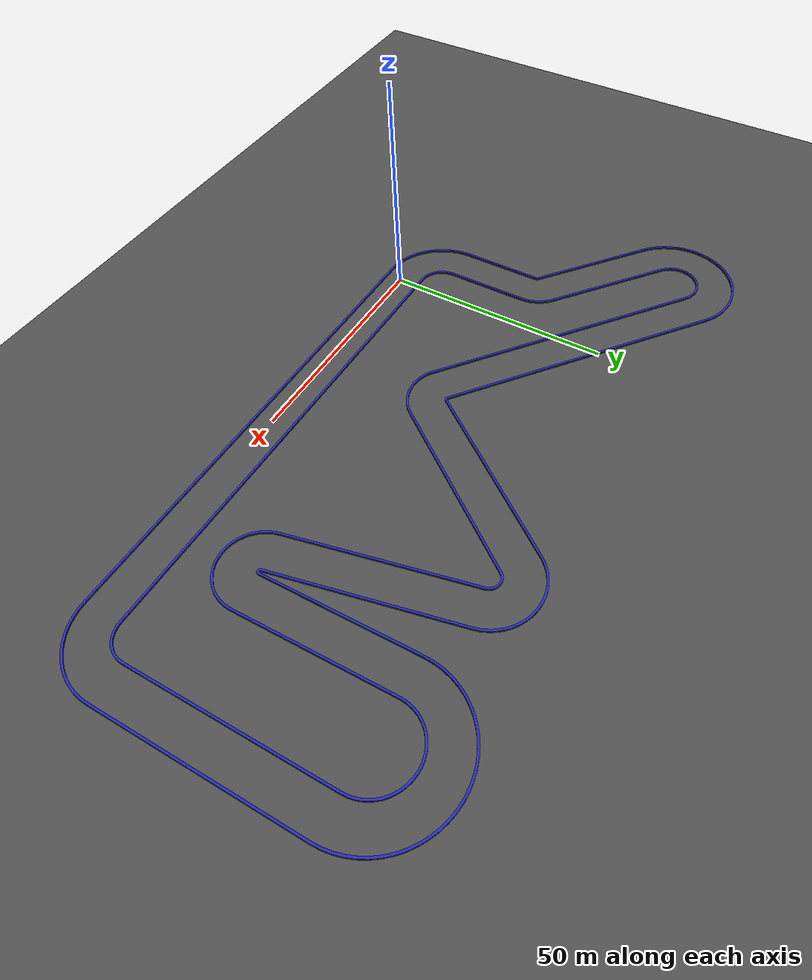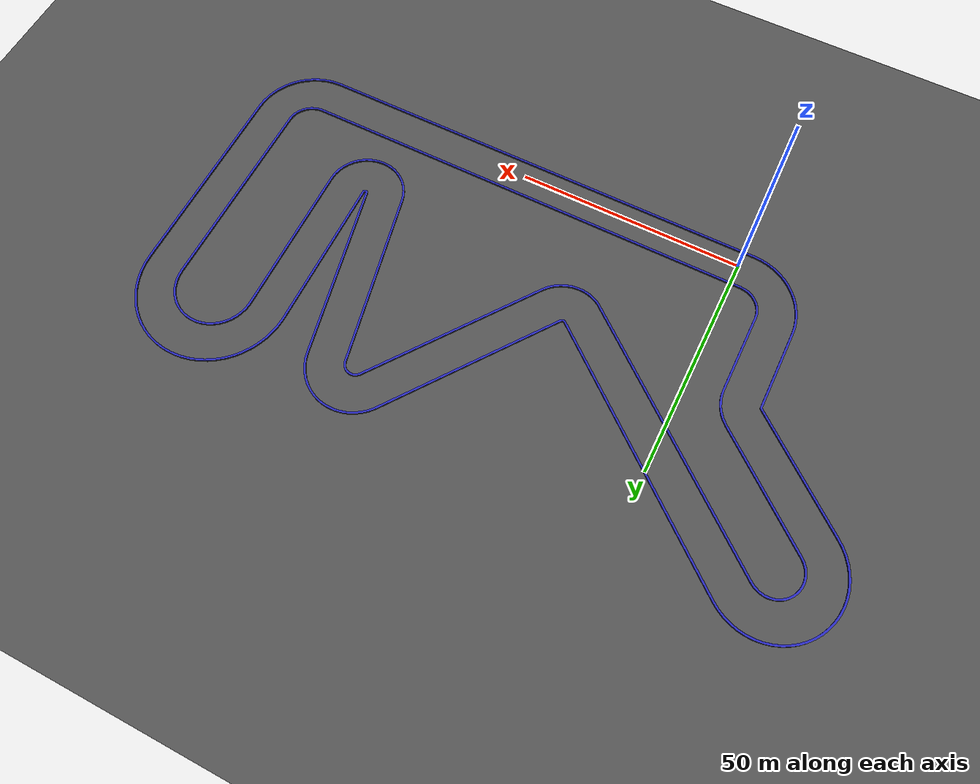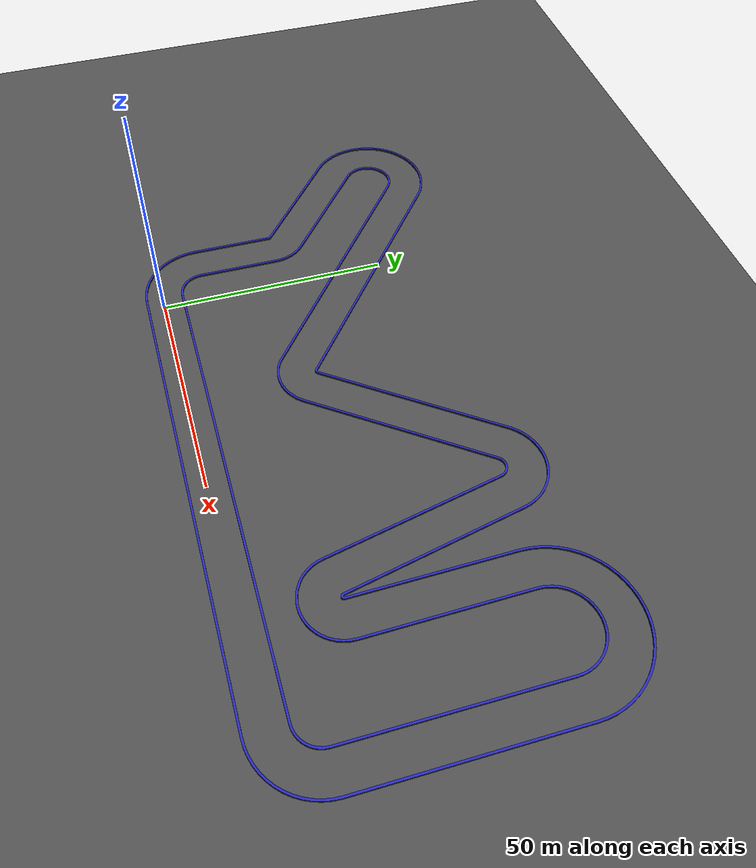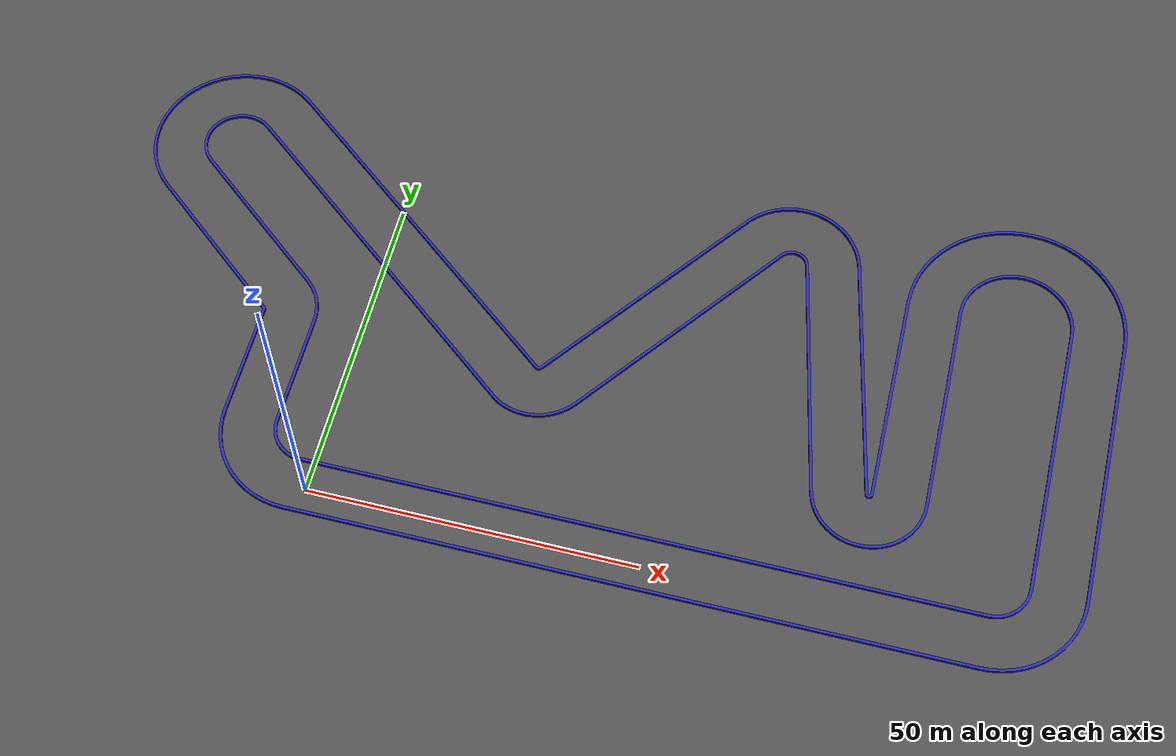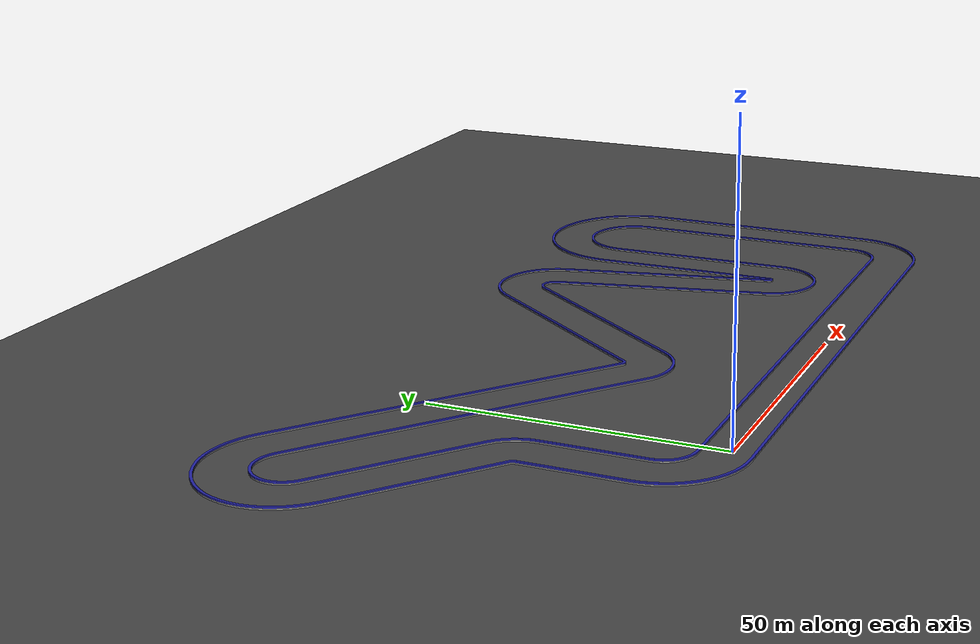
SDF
<sdf version="1.5">
 <world name="default">
  <include><uri>model://sun</uri></include>
  <model name="ground_plane">
   <pose>35 33 0 0 -0 0</pose>
   <static>1</static>
   <link name="link">
    <collision name="collision">
     <geometry><plane><normal>0 0 1</normal><size>180 100</size></plane></geometry>
     <surface>
      <contact><collide_bitmask>65535</collide_bitmask></contact>
      <friction><ode><mu>100</mu><mu2>50</mu2></ode></friction>
     </surface>
    </collision>
    <visual name="visual">
     <cast_shadows>0</cast_shadows>
     <geometry><plane><normal>0 0 1</normal><size>180 100</size></plane></geometry>
     <material>
      <script>
       <uri>model://asphalt_plane/materials/scripts</uri>
       <uri>model://asphalt_plane/materials/textures</uri>
       <name>vrc/asphalt</name>
      </script>
      <ambient>0.5 0.5 0.5 1</ambient>
      <diffuse>0.5 0.5 0.5 1</diffuse>
      <specular>0.2 0.2 0.2 1</specular>
      <emissive>0 0 0 1</emissive>
     </material>
    </visual>
   </link>
  </model>
  <physics name="default_physics" default="0" type="ode">
   <gravity>0 0 -9.8066</gravity>
   <ode>
    <solver>
     <type>quick</type>
     <iters>10</iters>
     <sor>1.3</sor>
     <use_dynamic_moi_rescaling>0</use_dynamic_moi_rescaling>
    </solver>
    <constraints>
     <cfm>0</cfm>
     <erp>0.2</erp>
     <contact_max_correcting_vel>100</contact_max_correcting_vel>
     <contact_surface_layer>0.001</contact_surface_layer>
    </constraints>
   </ode>
   <max_step_size>0.004</max_step_size>
   <real_time_factor>1</real_time_factor>
   <real_time_update_rate>250</real_time_update_rate>
   <magnetic_field>6.0e-6 2.3e-5 -4.2e-5</magnetic_field>
  </physics>
  <model name="evgp_wall">
   <link name="link_0">
    <inertial>
     <mass>1</mass>
     <inertia><ixx>0</ixx><ixy>0</ixy><ixz>0</ixz><iyy>0</iyy><iyz>0</iyz><izz>0</izz></inertia>
    </inertial>
    <visual name="visual">
     <geometry><mesh><uri>model://evgp/evgp.stl</uri><scale>0.001 0.001 0.0005</scale></mesh></geometry>
     <material>
      <ambient>1 1 1 1</ambient>
      <diffuse>0.5 0.5 0.5 1</diffuse>
      <specular>0.5 0.5 0.5 1</specular>
      <emissive>0.4 0.4 0.4 0.6</emissive>
      <shader type="pixel"><normal_map>__default__</normal_map></shader>
      <script><name>ModelPreview_1::link_0::visual_MATERIAL_</name><uri>__default__</uri></script>
     </material>
    </visual>
    <visual name="ModelPreview_1::link_0::visual_1">
     <geometry><mesh><uri>model://evgp/evgp.stl</uri><scale>0.001 0.001 0.0005</scale></mesh></geometry>
     <material>
      <ambient>0 0 1 1</ambient>
      <diffuse>0.15 0.15 0.7 1</diffuse>
      <specular>0.3 0.3 0.7 1</specular>
      <emissive>0.4 0.4 0.4 0.6</emissive>
      <shader type="pixel"><normal_map>__default__</normal_map></shader>
      <script><name>ModelPreview_1::link_0::visual_MATERIAL_</name><uri>__default__</uri></script>
     </material>
     <pose>0 0 0.225 0 -0 0</pose>
    </visual>
    <collision name="collision_1">
     <pose>0 0 0.225 0 -0 0</pose>
     <geometry><mesh><uri>model://evgp/evgp.stl</uri><scale>0.001 0.001 0.0005</scale></mesh></geometry>
     <surface>
      <friction>
       <ode><mu>1</mu><mu2>1</mu2><fdir1>0 0 0</fdir1><slip1>0</slip1><slip2>0</slip2></ode>
       <torsional>
        <coefficient>1</coefficient>
        <patch_radius>0</patch_radius>
        <surface_radius>0</surface_radius>
        <use_patch_radius>1</use_patch_radius>
        <ode><slip>0</slip></ode>
       </torsional>
      </friction>
      <bounce><restitution_coefficient>0</restitution_coefficient><threshold>1e+06</threshold></bounce>
      <contact>
       <collide_without_contact>0</collide_without_contact>
       <collide_without_contact_bitmask>1</collide_without_contact_bitmask>
       <collide_bitmask>1</collide_bitmask>
       <ode>
        <soft_cfm>0</soft_cfm>
        <soft_erp>0.2</soft_erp>
        <kp>1e+13</kp>
        <kd>1</kd>
        <max_vel>0.01</max_vel>
        <min_depth>0</min_depth>
       </ode>
       <bullet>
        <split_impulse>1</split_impulse>
        <split_impulse_penetration_threshold>-0.01</split_impulse_penetration_threshold>
        <soft_cfm>0</soft_cfm>
        <soft_erp>0.2</soft_erp>
        <kp>1e+13</kp>
        <kd>1</kd>
       </bullet>
      </contact>
     </surface>
    </collision>
    <collision name="collision_0">
     <geometry><mesh><uri>model://evgp/evgp.stl</uri><scale>0.001 0.001 0.0005</scale></mesh></geometry>
     <surface>
      <friction>
       <ode><mu>1</mu><mu2>1</mu2><fdir1>0 0 0</fdir1><slip1>0</slip1><slip2>0</slip2></ode>
       <torsional>
        <coefficient>1</coefficient>
        <patch_radius>0</patch_radius>
        <surface_radius>0</surface_radius>
        <use_patch_radius>1</use_patch_radius>
        <ode><slip>0</slip></ode>
       </torsional>
      </friction>
      <bounce><restitution_coefficient>0</restitution_coefficient><threshold>1e+06</threshold></bounce>
      <contact>
       <collide_without_contact>0</collide_without_contact>
       <collide_without_contact_bitmask>1</collide_without_contact_bitmask>
       <collide_bitmask>1</collide_bitmask>
       <ode>
        <soft_cfm>0</soft_cfm>
        <soft_erp>0.2</soft_erp>
        <kp>1e+13</kp>
        <kd>1</kd>
        <max_vel>0.01</max_vel>
        <min_depth>0</min_depth>
       </ode>
       <bullet>
        <split_impulse>1</split_impulse>
        <split_impulse_penetration_threshold>-0.01</split_impulse_penetration_threshold>
        <soft_cfm>0</soft_cfm>
        <soft_erp>0.2</soft_erp>
        <kp>1e+13</kp>
        <kd>1</kd>
       </bullet>
      </contact>
     </surface>
    </collision>
   </link>
   <static>1</static>
   <pose>35 33 0 0 0 0</pose>
  </model>
 </world>
</sdf>
